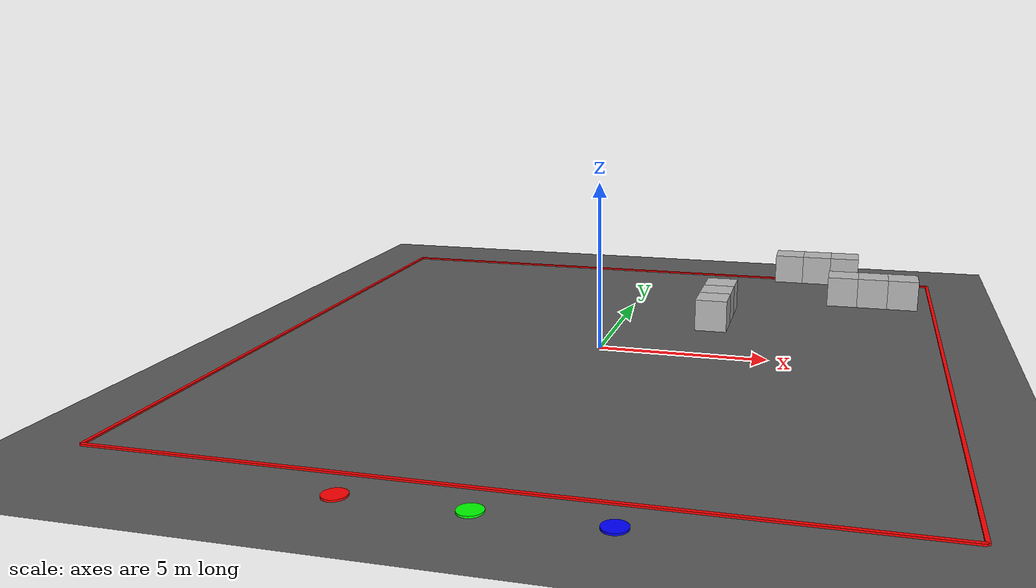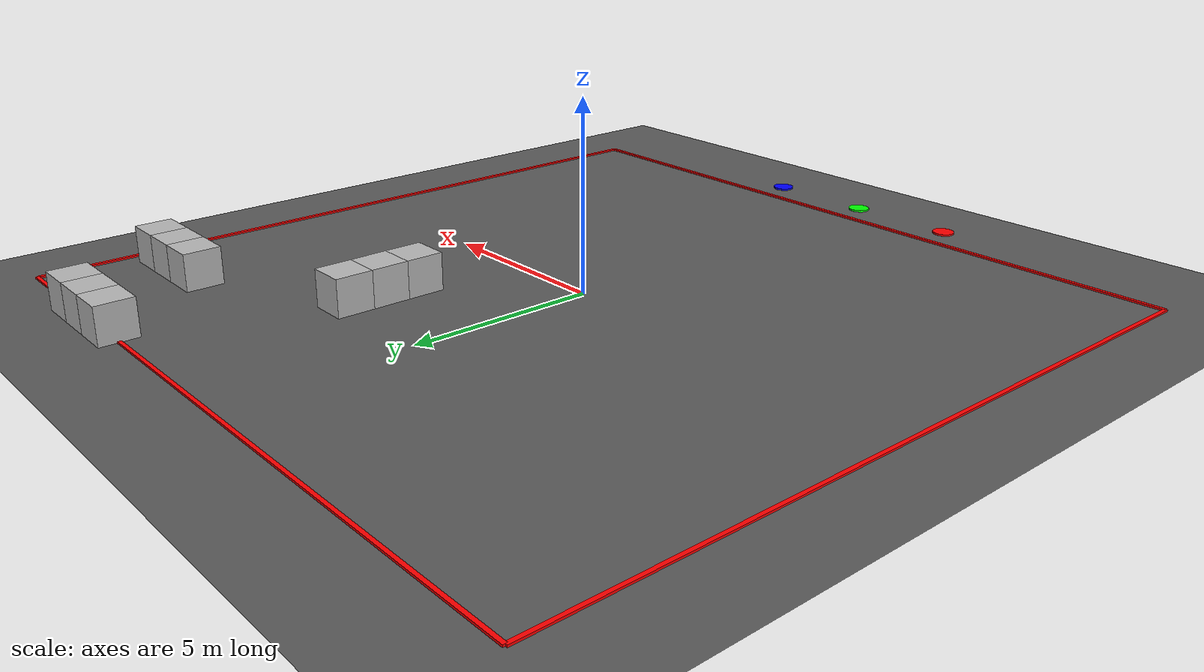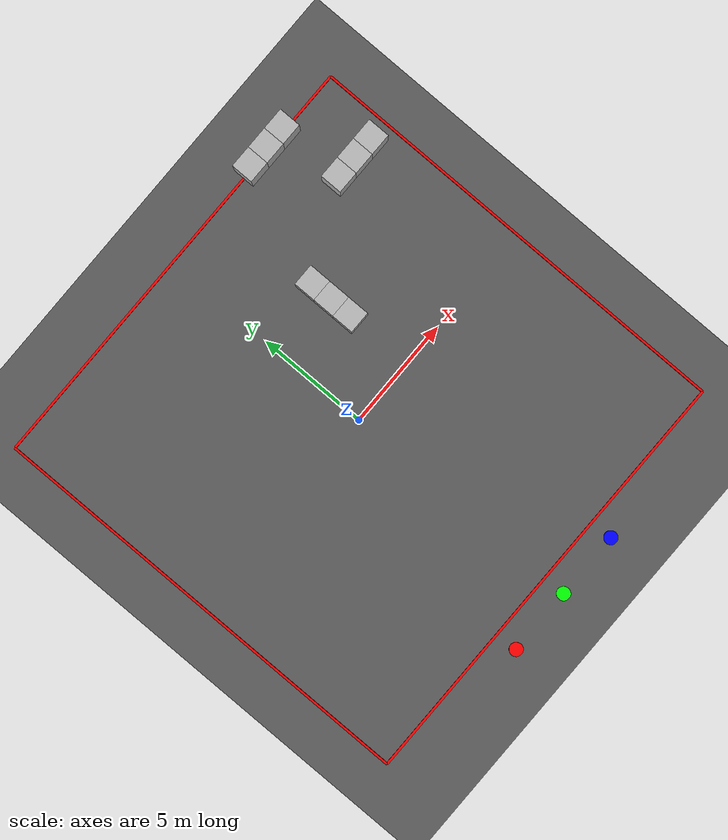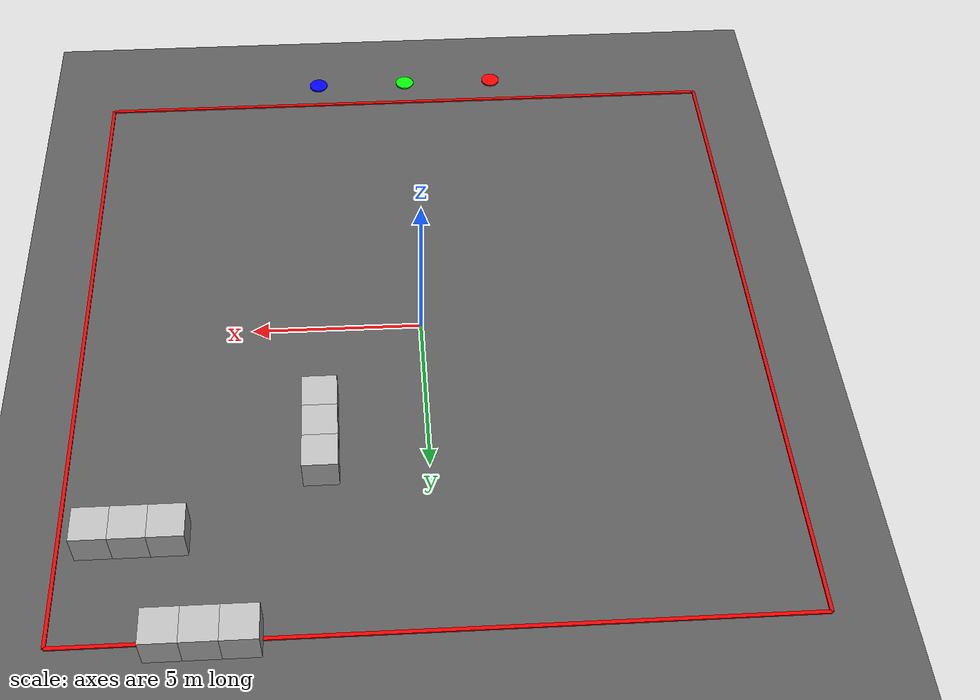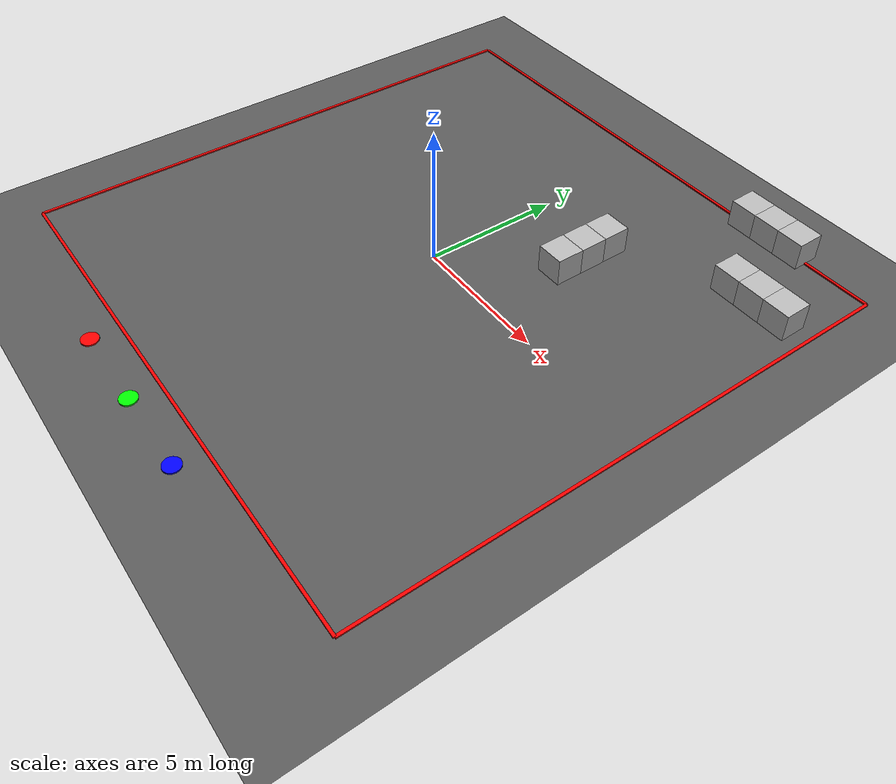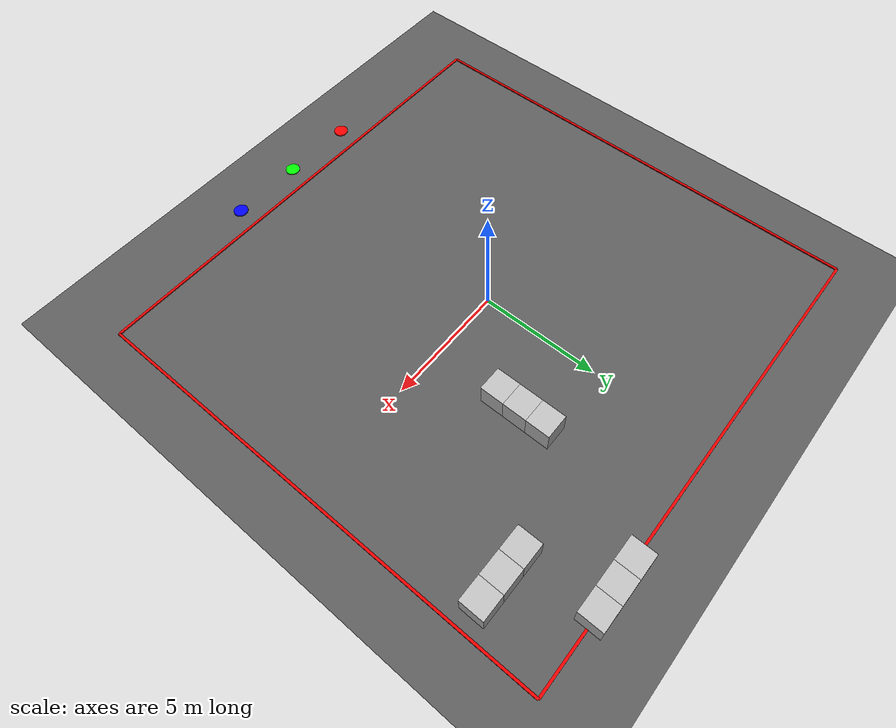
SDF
<sdf version="1.7">
 <world name="quadcopter_world">
  <physics type="ode"/>
  <scene><ambient>0.4 0.4 0.4 1</ambient><background>0.7 0.85 1 1</background><shadows>true</shadows></scene>
  <light type="directional" name="sun">
   <pose>0 0 50 0 0 0</pose>
   <diffuse>1 1 1 1</diffuse>
   <specular>1 1 1 1</specular>
   <attenuation>
    <range>1000</range>
    <constant>0.9</constant>
    <linear>0.01</linear>
    <quadratic>0.001</quadratic>
   </attenuation>
   <direction>-0.4 -0.2 -1</direction>
  </light>
  <model name="ground_plane">
   <static>true</static>
   <link name="link">
    <collision name="collision">
     <geometry><plane><normal>0 0 1</normal><size>200 200</size></plane></geometry>
    </collision>
    <visual name="visual">
     <geometry><plane><normal>0 0 1</normal><size>200 200</size></plane></geometry>
     <material><ambient>0.3 0.3 0.3 1</ambient><diffuse>0.35 0.35 0.35 1</diffuse></material>
    </visual>
   </link>
  </model>
  <model name="pad_x1">
   <static>true</static>
   <pose>-3 -11 0 0 0 0</pose>
   <link name="link">
    <visual name="visual">
     <geometry><cylinder><radius>0.3</radius><length>0.05</length></cylinder></geometry>
     <material><ambient>1 0 0 1</ambient><diffuse>1 0 0 1</diffuse></material>
    </visual>
   </link>
  </model>
  <model name="pad_x2">
   <static>true</static>
   <pose>0 -11 0 0 0 0</pose>
   <link name="link">
    <visual name="visual">
     <geometry><cylinder><radius>0.3</radius><length>0.05</length></cylinder></geometry>
     <material><ambient>0 1 0 1</ambient><diffuse>0 1 0 1</diffuse></material>
    </visual>
   </link>
  </model>
  <model name="pad_x3">
   <static>true</static>
   <pose>3 -11 0 0 0 0</pose>
   <link name="link">
    <visual name="visual">
     <geometry><cylinder><radius>0.3</radius><length>0.05</length></cylinder></geometry>
     <material><ambient>0 0 1 1</ambient><diffuse>0 0 1 1</diffuse></material>
    </visual>
   </link>
  </model>
  <model name="search_area_outline">
   <static>true</static>
   <link name="line_bottom">
    <visual name="vis">
     <geometry><box><size>20 0.1 0.05</size></box></geometry>
     <material><ambient>1 0 0 1</ambient><diffuse>1 0 0 1</diffuse></material>
    </visual>
    <pose>0 -10 0.01 0 0 0</pose>
   </link>
   <link name="line_top">
    <visual name="vis">
     <geometry><box><size>20 0.1 0.05</size></box></geometry>
     <material><ambient>1 0 0 1</ambient><diffuse>1 0 0 1</diffuse></material>
    </visual>
    <pose>0 10 0.01 0 0 0</pose>
   </link>
   <link name="line_left">
    <visual name="vis">
     <geometry><box><size>0.1 20 0.05</size></box></geometry>
     <material><ambient>1 0 0 1</ambient><diffuse>1 0 0 1</diffuse></material>
    </visual>
    <pose>-10 0 0.01 0 0 0</pose>
   </link>
   <link name="line_right">
    <visual name="vis">
     <geometry><box><size>0.1 20 0.05</size></box></geometry>
     <material><ambient>1 0 0 1</ambient><diffuse>1 0 0 1</diffuse></material>
    </visual>
    <pose>10 0 0.01 0 0 0</pose>
   </link>
  </model>
  <model name="medium_obstacles">
   <static>true</static>
   <link name="box1">
    <pose>3 3 0.5 0 0 0</pose>
    <collision name="collision"><geometry><box><size>1 1 1</size></box></geometry></collision>
    <visual name="visual"><geometry><box><size>1 1 1</size></box></geometry></visual>
   </link>
   <link name="box2">
    <pose>3 4 0.5 0 0 0</pose>
    <collision name="collision"><geometry><box><size>1 1 1</size></box></geometry></collision>
    <visual name="visual"><geometry><box><size>1 1 1</size></box></geometry></visual>
   </link>
   <link name="box3">
    <pose>3 5 0.5 0 0 0</pose>
    <collision name="collision"><geometry><box><size>1 1 1</size></box></geometry></collision>
    <visual name="visual"><geometry><box><size>1 1 1</size></box></geometry></visual>
   </link>
   <link name="box4">
    <pose>7 7 0.5 0 0 0</pose>
    <collision name="collision"><geometry><box><size>1 1 1</size></box></geometry></collision>
    <visual name="visual"><geometry><box><size>1 1 1</size></box></geometry></visual>
   </link>
   <link name="box5">
    <pose>8 7 0.5 0 0 0</pose>
    <collision name="collision"><geometry><box><size>1 1 1</size></box></geometry></collision>
    <visual name="visual"><geometry><box><size>1 1 1</size></box></geometry></visual>
   </link>
   <link name="box6">
    <pose>9 7 0.5 0 0 0</pose>
    <collision name="collision"><geometry><box><size>1 1 1</size></box></geometry></collision>
    <visual name="visual"><geometry><box><size>1 1 1</size></box></geometry></visual>
   </link>
   <link name="box7">
    <pose>5 10 0.5 0 0 0</pose>
    <collision name="collision"><geometry><box><size>1 1 1</size></box></geometry></collision>
    <visual name="visual"><geometry><box><size>1 1 1</size></box></geometry></visual>
   </link>
   <link name="box8">
    <pose>6 10 0.5 0 0 0</pose>
    <collision name="collision"><geometry><box><size>1 1 1</size></box></geometry></collision>
    <visual name="visual"><geometry><box><size>1 1 1</size></box></geometry></visual>
   </link>
   <link name="box9">
    <pose>7 10 0.5 0 0 0</pose>
    <collision name="collision"><geometry><box><size>1 1 1</size></box></geometry></collision>
    <visual name="visual"><geometry><box><size>1 1 1</size></box></geometry></visual>
   </link>
  </model>
 </world>
</sdf>
